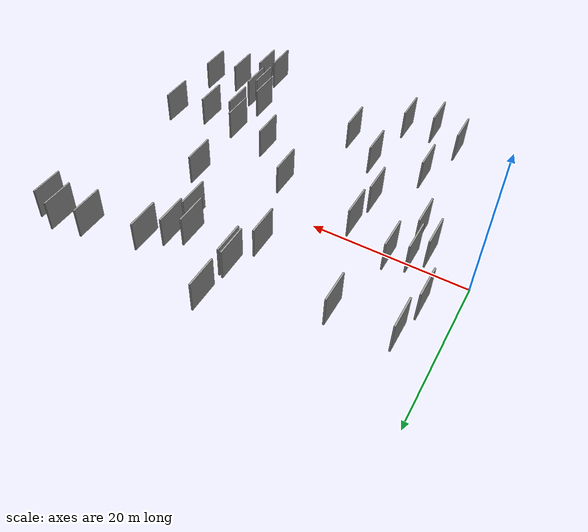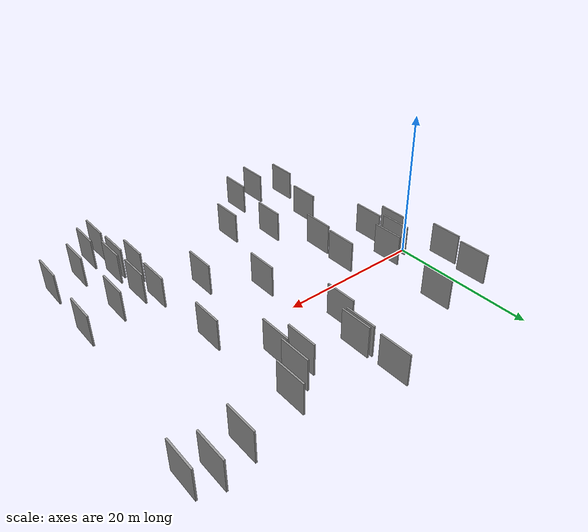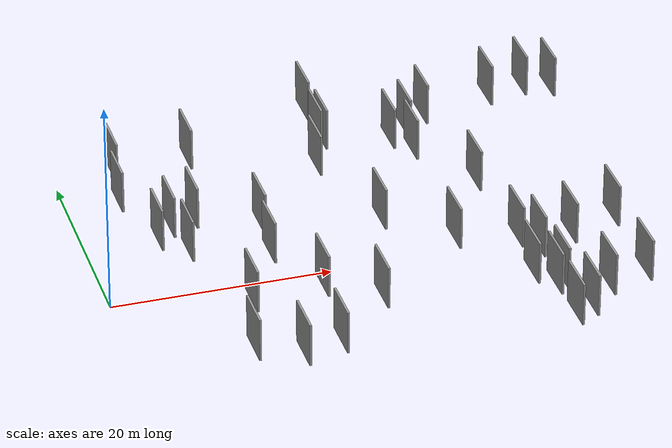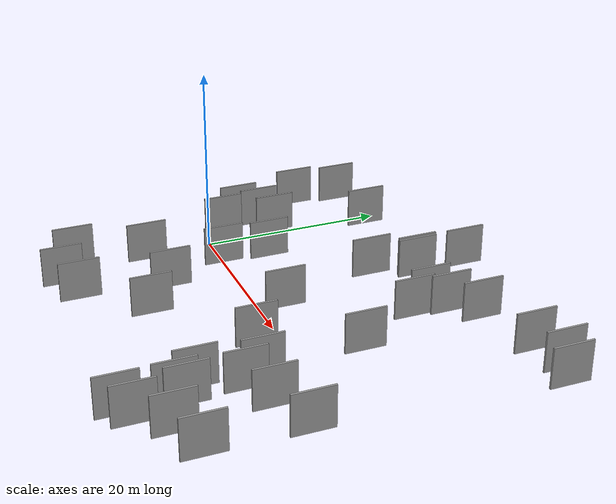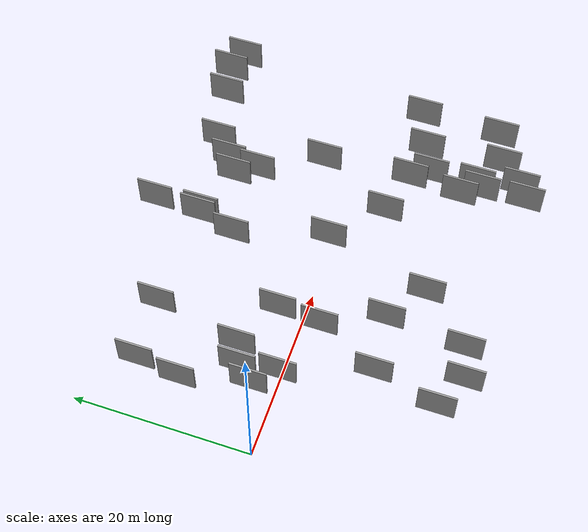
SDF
<sdf version="1.6">
 <world name="default">
  <scene>
   <sky><clouds><speed>12</speed></clouds></sky>
   <ambient>0.4 0.4 0.4 1</ambient>
   <background>0.7 0.7 0.7 1</background>
   <shadows>1</shadows>
  </scene>
  <gravity>0 0 -9.8066</gravity>
  <magnetic_field>6e-06 2.3e-05 -4.2e-05</magnetic_field>
  <physics default="0" name="default_physics" type="ode">
   <ode>
    <solver>
     <type>quick</type>
     <iters>10</iters>
     <sor>1.0</sor>
     <use_dynamic_moi_rescaling>0</use_dynamic_moi_rescaling>
    </solver>
    <constraints>
     <cfm>0</cfm>
     <erp>0.2</erp>
     <contact_max_correcting_vel>100</contact_max_correcting_vel>
     <contact_surface_layer>0.001</contact_surface_layer>
    </constraints>
   </ode>
   <max_step_size>0.004</max_step_size>
   <real_time_factor>1</real_time_factor>
   <real_time_update_rate>250</real_time_update_rate>
  </physics>
  <light name="sun" type="directional">
   <pose>0 0 10 0 0 0</pose>
   <diffuse>0.8 0.8 0.8 1</diffuse>
   <specular>0.2 0.2 0.2 1</specular>
   <attenuation>
    <range>1000</range>
    <constant>0.9</constant>
    <linear>0.01</linear>
    <quadratic>0.001</quadratic>
   </attenuation>
   <direction>-0.5 0.1 -0.9</direction>
  </light>
  <model name="grey_wall_1">
   <static>1</static>
   <pose>39.7737 17.2272 5.0 0.000000 0.000000 1.570796</pose>
   <link name="link">
    <pose>0 0 2.00 0 0 0</pose>
    <collision name="collision"><geometry><box><size>4.00 0.2 4.00</size></box></geometry></collision>
    <visual name="visual">
     <cast_shadows>0</cast_shadows>
     <geometry><box><size>4.00 0.2 4.00</size></box></geometry>
     <material>
      <script>
       <uri>model://grey_wall/materials/scripts</uri>
       <uri>model://grey_wall/materials/textures</uri>
       <name>vrc/grey_wall</name>
      </script>
     </material>
    </visual>
   </link>
  </model>
  <model name="grey_wall_2">
   <static>1</static>
   <pose>36.5214 -13.6682 5.0 0.000000 0.000000 1.570796</pose>
   <link name="link">
    <pose>0 0 2.00 0 0 0</pose>
    <collision name="collision"><geometry><box><size>4.00 0.2 4.00</size></box></geometry></collision>
    <visual name="visual">
     <cast_shadows>0</cast_shadows>
     <geometry><box><size>4.00 0.2 4.00</size></box></geometry>
     <material>
      <script>
       <uri>model://grey_wall/materials/scripts</uri>
       <uri>model://grey_wall/materials/textures</uri>
       <name>vrc/grey_wall</name>
      </script>
     </material>
    </visual>
   </link>
  </model>
  <model name="grey_wall_3">
   <static>1</static>
   <pose>34.3541 -12.2598 5.0 0.000000 0.000000 1.570796</pose>
   <link name="link">
    <pose>0 0 2.00 0 0 0</pose>
    <collision name="collision"><geometry><box><size>4.00 0.2 4.00</size></box></geometry></collision>
    <visual name="visual">
     <cast_shadows>0</cast_shadows>
     <geometry><box><size>4.00 0.2 4.00</size></box></geometry>
     <material>
      <script>
       <uri>model://grey_wall/materials/scripts</uri>
       <uri>model://grey_wall/materials/textures</uri>
       <name>vrc/grey_wall</name>
      </script>
     </material>
    </visual>
   </link>
  </model>
  <model name="grey_wall_4">
   <static>1</static>
   <pose>22.7019 14.2163 5.0 0.000000 0.000000 1.570796</pose>
   <link name="link">
    <pose>0 0 2.00 0 0 0</pose>
    <collision name="collision"><geometry><box><size>4.00 0.2 4.00</size></box></geometry></collision>
    <visual name="visual">
     <cast_shadows>0</cast_shadows>
     <geometry><box><size>4.00 0.2 4.00</size></box></geometry>
     <material>
      <script>
       <uri>model://grey_wall/materials/scripts</uri>
       <uri>model://grey_wall/materials/textures</uri>
       <name>vrc/grey_wall</name>
      </script>
     </material>
    </visual>
   </link>
  </model>
  <model name="grey_wall_5">
   <static>1</static>
   <pose>8.6656 4.5547 5.0 0.000000 0.000000 1.570796</pose>
   <link name="link">
    <pose>0 0 2.00 0 0 0</pose>
    <collision name="collision"><geometry><box><size>4.00 0.2 4.00</size></box></geometry></collision>
    <visual name="visual">
     <cast_shadows>0</cast_shadows>
     <geometry><box><size>4.00 0.2 4.00</size></box></geometry>
     <material>
      <script>
       <uri>model://grey_wall/materials/scripts</uri>
       <uri>model://grey_wall/materials/textures</uri>
       <name>vrc/grey_wall</name>
      </script>
     </material>
    </visual>
   </link>
  </model>
  <model name="grey_wall_6">
   <static>1</static>
   <pose>30.4517 10.0811 5.0 0.000000 0.000000 1.570796</pose>
   <link name="link">
    <pose>0 0 2.00 0 0 0</pose>
    <collision name="collision"><geometry><box><size>4.00 0.2 4.00</size></box></geometry></collision>
    <visual name="visual">
     <cast_shadows>0</cast_shadows>
     <geometry><box><size>4.00 0.2 4.00</size></box></geometry>
     <material>
      <script>
       <uri>model://grey_wall/materials/scripts</uri>
       <uri>model://grey_wall/materials/textures</uri>
       <name>vrc/grey_wall</name>
      </script>
     </material>
    </visual>
   </link>
  </model>
  <model name="grey_wall_7">
   <static>1</static>
   <pose>14.0369 1.9463 5.0 0.000000 0.000000 1.570796</pose>
   <link name="link">
    <pose>0 0 2.00 0 0 0</pose>
    <collision name="collision"><geometry><box><size>4.00 0.2 4.00</size></box></geometry></collision>
    <visual name="visual">
     <cast_shadows>0</cast_shadows>
     <geometry><box><size>4.00 0.2 4.00</size></box></geometry>
     <material>
      <script>
       <uri>model://grey_wall/materials/scripts</uri>
       <uri>model://grey_wall/materials/textures</uri>
       <name>vrc/grey_wall</name>
      </script>
     </material>
    </visual>
   </link>
  </model>
  <model name="grey_wall_8">
   <static>1</static>
   <pose>43.3357 18.0027 5.0 0.000000 0.000000 1.570796</pose>
   <link name="link">
    <pose>0 0 2.00 0 0 0</pose>
    <collision name="collision"><geometry><box><size>4.00 0.2 4.00</size></box></geometry></collision>
    <visual name="visual">
     <cast_shadows>0</cast_shadows>
     <geometry><box><size>4.00 0.2 4.00</size></box></geometry>
     <material>
      <script>
       <uri>model://grey_wall/materials/scripts</uri>
       <uri>model://grey_wall/materials/textures</uri>
       <name>vrc/grey_wall</name>
      </script>
     </material>
    </visual>
   </link>
  </model>
  <model name="grey_wall_9">
   <static>1</static>
   <pose>29.0372 12.4227 5.0 0.000000 0.000000 1.570796</pose>
   <link name="link">
    <pose>0 0 2.00 0 0 0</pose>
    <collision name="collision"><geometry><box><size>4.00 0.2 4.00</size></box></geometry></collision>
    <visual name="visual">
     <cast_shadows>0</cast_shadows>
     <geometry><box><size>4.00 0.2 4.00</size></box></geometry>
     <material>
      <script>
       <uri>model://grey_wall/materials/scripts</uri>
       <uri>model://grey_wall/materials/textures</uri>
       <name>vrc/grey_wall</name>
      </script>
     </material>
    </visual>
   </link>
  </model>
  <model name="grey_wall_10">
   <static>1</static>
   <pose>16.5495 -9.1146 5.0 0.000000 0.000000 1.570796</pose>
   <link name="link">
    <pose>0 0 2.00 0 0 0</pose>
    <collision name="collision"><geometry><box><size>4.00 0.2 4.00</size></box></geometry></collision>
    <visual name="visual">
     <cast_shadows>0</cast_shadows>
     <geometry><box><size>4.00 0.2 4.00</size></box></geometry>
     <material>
      <script>
       <uri>model://grey_wall/materials/scripts</uri>
       <uri>model://grey_wall/materials/textures</uri>
       <name>vrc/grey_wall</name>
      </script>
     </material>
    </visual>
   </link>
  </model>
  <model name="grey_wall_11">
   <static>1</static>
   <pose>21.4360 9.8905 5.0 0.000000 0.000000 1.570796</pose>
   <link name="link">
    <pose>0 0 2.00 0 0 0</pose>
    <collision name="collision"><geometry><box><size>4.00 0.2 4.00</size></box></geometry></collision>
    <visual name="visual">
     <cast_shadows>0</cast_shadows>
     <geometry><box><size>4.00 0.2 4.00</size></box></geometry>
     <material>
      <script>
       <uri>model://grey_wall/materials/scripts</uri>
       <uri>model://grey_wall/materials/textures</uri>
       <name>vrc/grey_wall</name>
      </script>
     </material>
    </visual>
   </link>
  </model>
  <model name="grey_wall_12">
   <static>1</static>
   <pose>22.9943 19.3496 5.0 0.000000 0.000000 1.570796</pose>
   <link name="link">
    <pose>0 0 2.00 0 0 0</pose>
    <collision name="collision"><geometry><box><size>4.00 0.2 4.00</size></box></geometry></collision>
    <visual name="visual">
     <cast_shadows>0</cast_shadows>
     <geometry><box><size>4.00 0.2 4.00</size></box></geometry>
     <material>
      <script>
       <uri>model://grey_wall/materials/scripts</uri>
       <uri>model://grey_wall/materials/textures</uri>
       <name>vrc/grey_wall</name>
      </script>
     </material>
    </visual>
   </link>
  </model>
  <model name="grey_wall_13">
   <static>1</static>
   <pose>39.4922 -7.1255 5.0 0.000000 0.000000 1.570796</pose>
   <link name="link">
    <pose>0 0 2.00 0 0 0</pose>
    <collision name="collision"><geometry><box><size>4.00 0.2 4.00</size></box></geometry></collision>
    <visual name="visual">
     <cast_shadows>0</cast_shadows>
     <geometry><box><size>4.00 0.2 4.00</size></box></geometry>
     <material>
      <script>
       <uri>model://grey_wall/materials/scripts</uri>
       <uri>model://grey_wall/materials/textures</uri>
       <name>vrc/grey_wall</name>
      </script>
     </material>
    </visual>
   </link>
  </model>
  <model name="grey_wall_14">
   <static>1</static>
   <pose>10.6797 14.2090 5.0 0.000000 0.000000 1.570796</pose>
   <link name="link">
    <pose>0 0 2.00 0 0 0</pose>
    <collision name="collision"><geometry><box><size>4.00 0.2 4.00</size></box></geometry></collision>
    <visual name="visual">
     <cast_shadows>0</cast_shadows>
     <geometry><box><size>4.00 0.2 4.00</size></box></geometry>
     <material>
      <script>
       <uri>model://grey_wall/materials/scripts</uri>
       <uri>model://grey_wall/materials/textures</uri>
       <name>vrc/grey_wall</name>
      </script>
     </material>
    </visual>
   </link>
  </model>
  <model name="grey_wall_15">
   <static>1</static>
   <pose>39.9964 -15.7998 5.0 0.000000 0.000000 1.570796</pose>
   <link name="link">
    <pose>0 0 2.00 0 0 0</pose>
    <collision name="collision"><geometry><box><size>4.00 0.2 4.00</size></box></geometry></collision>
    <visual name="visual">
     <cast_shadows>0</cast_shadows>
     <geometry><box><size>4.00 0.2 4.00</size></box></geometry>
     <material>
      <script>
       <uri>model://grey_wall/materials/scripts</uri>
       <uri>model://grey_wall/materials/textures</uri>
       <name>vrc/grey_wall</name>
      </script>
     </material>
    </visual>
   </link>
  </model>
  <model name="grey_wall_16">
   <static>1</static>
   <pose>35.7026 -14.4355 5.0 0.000000 0.000000 1.570796</pose>
   <link name="link">
    <pose>0 0 2.00 0 0 0</pose>
    <collision name="collision"><geometry><box><size>4.00 0.2 4.00</size></box></geometry></collision>
    <visual name="visual">
     <cast_shadows>0</cast_shadows>
     <geometry><box><size>4.00 0.2 4.00</size></box></geometry>
     <material>
      <script>
       <uri>model://grey_wall/materials/scripts</uri>
       <uri>model://grey_wall/materials/textures</uri>
       <name>vrc/grey_wall</name>
      </script>
     </material>
    </visual>
   </link>
  </model>
  <model name="grey_wall_17">
   <static>1</static>
   <pose>12.1070 -18.7180 5.0 0.000000 0.000000 1.570796</pose>
   <link name="link">
    <pose>0 0 2.00 0 0 0</pose>
    <collision name="collision"><geometry><box><size>4.00 0.2 4.00</size></box></geometry></collision>
    <visual name="visual">
     <cast_shadows>0</cast_shadows>
     <geometry><box><size>4.00 0.2 4.00</size></box></geometry>
     <material>
      <script>
       <uri>model://grey_wall/materials/scripts</uri>
       <uri>model://grey_wall/materials/textures</uri>
       <name>vrc/grey_wall</name>
      </script>
     </material>
    </visual>
   </link>
  </model>
  <model name="grey_wall_18">
   <static>1</static>
   <pose>37.5478 -18.4277 5.0 0.000000 0.000000 1.570796</pose>
   <link name="link">
    <pose>0 0 2.00 0 0 0</pose>
    <collision name="collision"><geometry><box><size>4.00 0.2 4.00</size></box></geometry></collision>
    <visual name="visual">
     <cast_shadows>0</cast_shadows>
     <geometry><box><size>4.00 0.2 4.00</size></box></geometry>
     <material>
      <script>
       <uri>model://grey_wall/materials/scripts</uri>
       <uri>model://grey_wall/materials/textures</uri>
       <name>vrc/grey_wall</name>
      </script>
     </material>
    </visual>
   </link>
  </model>
  <model name="grey_wall_19">
   <static>1</static>
   <pose>34.8630 -6.4273 5.0 0.000000 0.000000 1.570796</pose>
   <link name="link">
    <pose>0 0 2.00 0 0 0</pose>
    <collision name="collision"><geometry><box><size>4.00 0.2 4.00</size></box></geometry></collision>
    <visual name="visual">
     <cast_shadows>0</cast_shadows>
     <geometry><box><size>4.00 0.2 4.00</size></box></geometry>
     <material>
      <script>
       <uri>model://grey_wall/materials/scripts</uri>
       <uri>model://grey_wall/materials/textures</uri>
       <name>vrc/grey_wall</name>
      </script>
     </material>
    </visual>
   </link>
  </model>
  <model name="grey_wall_20">
   <static>1</static>
   <pose>20.8919 -12.2482 5.0 0.000000 0.000000 1.570796</pose>
   <link name="link">
    <pose>0 0 2.00 0 0 0</pose>
    <collision name="collision"><geometry><box><size>4.00 0.2 4.00</size></box></geometry></collision>
    <visual name="visual">
     <cast_shadows>0</cast_shadows>
     <geometry><box><size>4.00 0.2 4.00</size></box></geometry>
     <material>
      <script>
       <uri>model://grey_wall/materials/scripts</uri>
       <uri>model://grey_wall/materials/textures</uri>
       <name>vrc/grey_wall</name>
      </script>
     </material>
    </visual>
   </link>
  </model>
  <model name="grey_wall_21">
   <static>1</static>
   <pose>43.7235 -14.5778 5.0 0.000000 0.000000 1.570796</pose>
   <link name="link">
    <pose>0 0 2.00 0 0 0</pose>
    <collision name="collision"><geometry><box><size>4.00 0.2 4.00</size></box></geometry></collision>
    <visual name="visual">
     <cast_shadows>0</cast_shadows>
     <geometry><box><size>4.00 0.2 4.00</size></box></geometry>
     <material>
      <script>
       <uri>model://grey_wall/materials/scripts</uri>
       <uri>model://grey_wall/materials/textures</uri>
       <name>vrc/grey_wall</name>
      </script>
     </material>
    </visual>
   </link>
  </model>
  <model name="grey_wall_22">
   <static>1</static>
   <pose>23.1831 14.0535 5.0 0.000000 0.000000 1.570796</pose>
   <link name="link">
    <pose>0 0 2.00 0 0 0</pose>
    <collision name="collision"><geometry><box><size>4.00 0.2 4.00</size></box></geometry></collision>
    <visual name="visual">
     <cast_shadows>0</cast_shadows>
     <geometry><box><size>4.00 0.2 4.00</size></box></geometry>
     <material>
      <script>
       <uri>model://grey_wall/materials/scripts</uri>
       <uri>model://grey_wall/materials/textures</uri>
       <name>vrc/grey_wall</name>
      </script>
     </material>
    </visual>
   </link>
  </model>
  <model name="grey_wall_23">
   <static>1</static>
   <pose>13.6134 -2.7442 5.0 0.000000 0.000000 1.570796</pose>
   <link name="link">
    <pose>0 0 2.00 0 0 0</pose>
    <collision name="collision"><geometry><box><size>4.00 0.2 4.00</size></box></geometry></collision>
    <visual name="visual">
     <cast_shadows>0</cast_shadows>
     <geometry><box><size>4.00 0.2 4.00</size></box></geometry>
     <material>
      <script>
       <uri>model://grey_wall/materials/scripts</uri>
       <uri>model://grey_wall/materials/textures</uri>
       <name>vrc/grey_wall</name>
      </script>
     </material>
    </visual>
   </link>
  </model>
  <model name="grey_wall_24">
   <static>1</static>
   <pose>45.7509 17.1060 5.0 0.000000 0.000000 1.570796</pose>
   <link name="link">
    <pose>0 0 2.00 0 0 0</pose>
    <collision name="collision"><geometry><box><size>4.00 0.2 4.00</size></box></geometry></collision>
    <visual name="visual">
     <cast_shadows>0</cast_shadows>
     <geometry><box><size>4.00 0.2 4.00</size></box></geometry>
     <material>
      <script>
       <uri>model://grey_wall/materials/scripts</uri>
       <uri>model://grey_wall/materials/textures</uri>
       <name>vrc/grey_wall</name>
      </script>
     </material>
    </visual>
   </link>
  </model>
  <model name="grey_wall_25">
   <static>1</static>
   <pose>4.8499 1.9086 5.0 0.000000 0.000000 1.570796</pose>
   <link name="link">
    <pose>0 0 2.00 0 0 0</pose>
    <collision name="collision"><geometry><box><size>4.00 0.2 4.00</size></box></geometry></collision>
    <visual name="visual">
     <cast_shadows>0</cast_shadows>
     <geometry><box><size>4.00 0.2 4.00</size></box></geometry>
     <material>
      <script>
       <uri>model://grey_wall/materials/scripts</uri>
       <uri>model://grey_wall/materials/textures</uri>
       <name>vrc/grey_wall</name>
      </script>
     </material>
    </visual>
   </link>
  </model>
  <model name="grey_wall_26">
   <static>1</static>
   <pose>3.0642 8.9905 5.0 0.000000 0.000000 1.570796</pose>
   <link name="link">
    <pose>0 0 2.00 0 0 0</pose>
    <collision name="collision"><geometry><box><size>4.00 0.2 4.00</size></box></geometry></collision>
    <visual name="visual">
     <cast_shadows>0</cast_shadows>
     <geometry><box><size>4.00 0.2 4.00</size></box></geometry>
     <material>
      <script>
       <uri>model://grey_wall/materials/scripts</uri>
       <uri>model://grey_wall/materials/textures</uri>
       <name>vrc/grey_wall</name>
      </script>
     </material>
    </visual>
   </link>
  </model>
  <model name="grey_wall_27">
   <static>1</static>
   <pose>29.6071 -5.1067 5.0 0.000000 0.000000 1.570796</pose>
   <link name="link">
    <pose>0 0 2.00 0 0 0</pose>
    <collision name="collision"><geometry><box><size>4.00 0.2 4.00</size></box></geometry></collision>
    <visual name="visual">
     <cast_shadows>0</cast_shadows>
     <geometry><box><size>4.00 0.2 4.00</size></box></geometry>
     <material>
      <script>
       <uri>model://grey_wall/materials/scripts</uri>
       <uri>model://grey_wall/materials/textures</uri>
       <name>vrc/grey_wall</name>
      </script>
     </material>
    </visual>
   </link>
  </model>
  <model name="grey_wall_28">
   <static>1</static>
   <pose>15.6488 -17.7944 5.0 0.000000 0.000000 1.570796</pose>
   <link name="link">
    <pose>0 0 2.00 0 0 0</pose>
    <collision name="collision"><geometry><box><size>4.00 0.2 4.00</size></box></geometry></collision>
    <visual name="visual">
     <cast_shadows>0</cast_shadows>
     <geometry><box><size>4.00 0.2 4.00</size></box></geometry>
     <material>
      <script>
       <uri>model://grey_wall/materials/scripts</uri>
       <uri>model://grey_wall/materials/textures</uri>
       <name>vrc/grey_wall</name>
      </script>
     </material>
    </visual>
   </link>
  </model>
  <model name="grey_wall_29">
   <static>1</static>
   <pose>33.1297 15.7187 5.0 0.000000 0.000000 1.570796</pose>
   <link name="link">
    <pose>0 0 2.00 0 0 0</pose>
    <collision name="collision"><geometry><box><size>4.00 0.2 4.00</size></box></geometry></collision>
    <visual name="visual">
     <cast_shadows>0</cast_shadows>
     <geometry><box><size>4.00 0.2 4.00</size></box></geometry>
     <material>
      <script>
       <uri>model://grey_wall/materials/scripts</uri>
       <uri>model://grey_wall/materials/textures</uri>
       <name>vrc/grey_wall</name>
      </script>
     </material>
    </visual>
   </link>
  </model>
  <model name="grey_wall_30">
   <static>1</static>
   <pose>34.2191 3.4209 5.0 0.000000 0.000000 1.570796</pose>
   <link name="link">
    <pose>0 0 2.00 0 0 0</pose>
    <collision name="collision"><geometry><box><size>4.00 0.2 4.00</size></box></geometry></collision>
    <visual name="visual">
     <cast_shadows>0</cast_shadows>
     <geometry><box><size>4.00 0.2 4.00</size></box></geometry>
     <material>
      <script>
       <uri>model://grey_wall/materials/scripts</uri>
       <uri>model://grey_wall/materials/textures</uri>
       <name>vrc/grey_wall</name>
      </script>
     </material>
    </visual>
   </link>
  </model>
  <model name="grey_wall_31">
   <static>1</static>
   <pose>43.9449 -5.5701 5.0 0.000000 0.000000 1.570796</pose>
   <link name="link">
    <pose>0 0 2.00 0 0 0</pose>
    <collision name="collision"><geometry><box><size>4.00 0.2 4.00</size></box></geometry></collision>
    <visual name="visual">
     <cast_shadows>0</cast_shadows>
     <geometry><box><size>4.00 0.2 4.00</size></box></geometry>
     <material>
      <script>
       <uri>model://grey_wall/materials/scripts</uri>
       <uri>model://grey_wall/materials/textures</uri>
       <name>vrc/grey_wall</name>
      </script>
     </material>
    </visual>
   </link>
  </model>
  <model name="grey_wall_32">
   <static>1</static>
   <pose>6.9239 -0.5233 5.0 0.000000 0.000000 1.570796</pose>
   <link name="link">
    <pose>0 0 2.00 0 0 0</pose>
    <collision name="collision"><geometry><box><size>4.00 0.2 4.00</size></box></geometry></collision>
    <visual name="visual">
     <cast_shadows>0</cast_shadows>
     <geometry><box><size>4.00 0.2 4.00</size></box></geometry>
     <material>
      <script>
       <uri>model://grey_wall/materials/scripts</uri>
       <uri>model://grey_wall/materials/textures</uri>
       <name>vrc/grey_wall</name>
      </script>
     </material>
    </visual>
   </link>
  </model>
  <model name="grey_wall_33">
   <static>1</static>
   <pose>10.1201 -9.7070 5.0 0.000000 0.000000 1.570796</pose>
   <link name="link">
    <pose>0 0 2.00 0 0 0</pose>
    <collision name="collision"><geometry><box><size>4.00 0.2 4.00</size></box></geometry></collision>
    <visual name="visual">
     <cast_shadows>0</cast_shadows>
     <geometry><box><size>4.00 0.2 4.00</size></box></geometry>
     <material>
      <script>
       <uri>model://grey_wall/materials/scripts</uri>
       <uri>model://grey_wall/materials/textures</uri>
       <name>vrc/grey_wall</name>
      </script>
     </material>
    </visual>
   </link>
  </model>
  <model name="grey_wall_34">
   <static>1</static>
   <pose>35.8432 -19.3730 5.0 0.000000 0.000000 1.570796</pose>
   <link name="link">
    <pose>0 0 2.00 0 0 0</pose>
    <collision name="collision"><geometry><box><size>4.00 0.2 4.00</size></box></geometry></collision>
    <visual name="visual">
     <cast_shadows>0</cast_shadows>
     <geometry><box><size>4.00 0.2 4.00</size></box></geometry>
     <material>
      <script>
       <uri>model://grey_wall/materials/scripts</uri>
       <uri>model://grey_wall/materials/textures</uri>
       <name>vrc/grey_wall</name>
      </script>
     </material>
    </visual>
   </link>
  </model>
  <model name="grey_wall_35">
   <static>1</static>
   <pose>8.3212 -16.7823 5.0 0.000000 0.000000 1.570796</pose>
   <link name="link">
    <pose>0 0 2.00 0 0 0</pose>
    <collision name="collision"><geometry><box><size>4.00 0.2 4.00</size></box></geometry></collision>
    <visual name="visual">
     <cast_shadows>0</cast_shadows>
     <geometry><box><size>4.00 0.2 4.00</size></box></geometry>
     <material>
      <script>
       <uri>model://grey_wall/materials/scripts</uri>
       <uri>model://grey_wall/materials/textures</uri>
       <name>vrc/grey_wall</name>
      </script>
     </material>
    </visual>
   </link>
  </model>
  <model name="grey_wall_36">
   <static>1</static>
   <pose>6.3572 3.6498 5.0 0.000000 0.000000 1.570796</pose>
   <link name="link">
    <pose>0 0 2.00 0 0 0</pose>
    <collision name="collision"><geometry><box><size>4.00 0.2 4.00</size></box></geometry></collision>
    <visual name="visual">
     <cast_shadows>0</cast_shadows>
     <geometry><box><size>4.00 0.2 4.00</size></box></geometry>
     <material>
      <script>
       <uri>model://grey_wall/materials/scripts</uri>
       <uri>model://grey_wall/materials/textures</uri>
       <name>vrc/grey_wall</name>
      </script>
     </material>
    </visual>
   </link>
  </model>
  <model name="grey_wall_37">
   <static>1</static>
   <pose>24.3335 -0.2824 5.0 0.000000 0.000000 1.570796</pose>
   <link name="link">
    <pose>0 0 2.00 0 0 0</pose>
    <collision name="collision"><geometry><box><size>4.00 0.2 4.00</size></box></geometry></collision>
    <visual name="visual">
     <cast_shadows>0</cast_shadows>
     <geometry><box><size>4.00 0.2 4.00</size></box></geometry>
     <material>
      <script>
       <uri>model://grey_wall/materials/scripts</uri>
       <uri>model://grey_wall/materials/textures</uri>
       <name>vrc/grey_wall</name>
      </script>
     </material>
    </visual>
   </link>
  </model>
  <model name="grey_wall_38">
   <static>1</static>
   <pose>30.8726 13.6297 5.0 0.000000 0.000000 1.570796</pose>
   <link name="link">
    <pose>0 0 2.00 0 0 0</pose>
    <collision name="collision"><geometry><box><size>4.00 0.2 4.00</size></box></geometry></collision>
    <visual name="visual">
     <cast_shadows>0</cast_shadows>
     <geometry><box><size>4.00 0.2 4.00</size></box></geometry>
     <material>
      <script>
       <uri>model://grey_wall/materials/scripts</uri>
       <uri>model://grey_wall/materials/textures</uri>
       <name>vrc/grey_wall</name>
      </script>
     </material>
    </visual>
   </link>
  </model>
  <model name="grey_wall_39">
   <static>1</static>
   <pose>3.7374 13.7624 5.0 0.000000 0.000000 1.570796</pose>
   <link name="link">
    <pose>0 0 2.00 0 0 0</pose>
    <collision name="collision"><geometry><box><size>4.00 0.2 4.00</size></box></geometry></collision>
    <visual name="visual">
     <cast_shadows>0</cast_shadows>
     <geometry><box><size>4.00 0.2 4.00</size></box></geometry>
     <material>
      <script>
       <uri>model://grey_wall/materials/scripts</uri>
       <uri>model://grey_wall/materials/textures</uri>
       <name>vrc/grey_wall</name>
      </script>
     </material>
    </visual>
   </link>
  </model>
  <model name="grey_wall_40">
   <static>1</static>
   <pose>36.1915 -8.4357 5.0 0.000000 0.000000 1.570796</pose>
   <link name="link">
    <pose>0 0 2.00 0 0 0</pose>
    <collision name="collision"><geometry><box><size>4.00 0.2 4.00</size></box></geometry></collision>
    <visual name="visual">
     <cast_shadows>0</cast_shadows>
     <geometry><box><size>4.00 0.2 4.00</size></box></geometry>
     <material>
      <script>
       <uri>model://grey_wall/materials/scripts</uri>
       <uri>model://grey_wall/materials/textures</uri>
       <name>vrc/grey_wall</name>
      </script>
     </material>
    </visual>
   </link>
  </model>
 </world>
</sdf>
